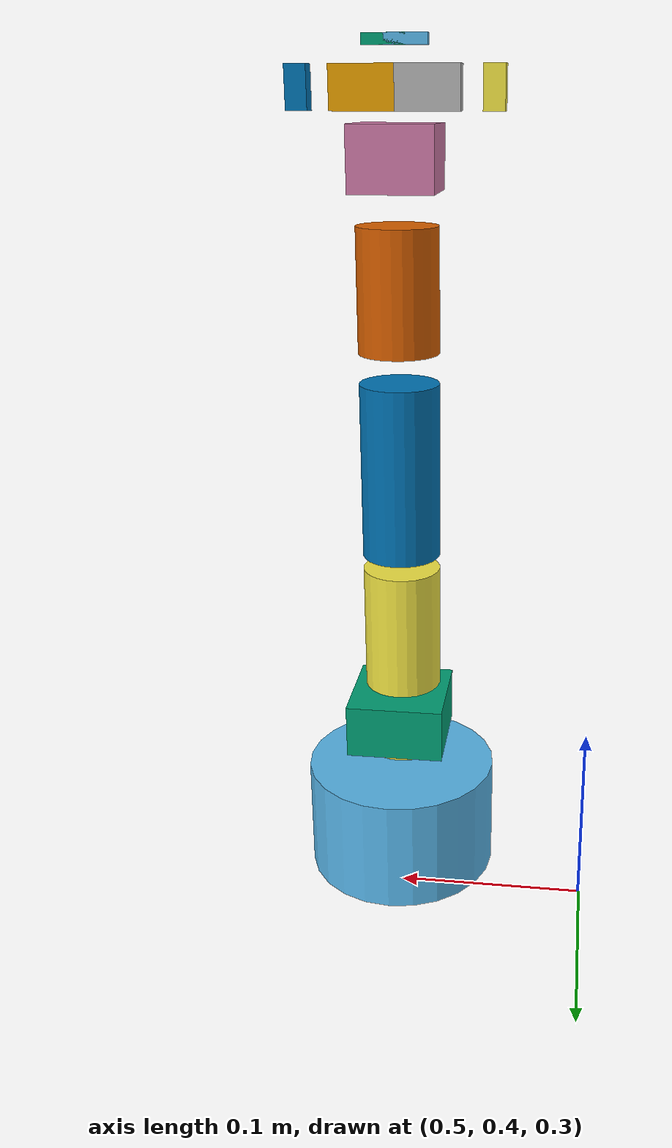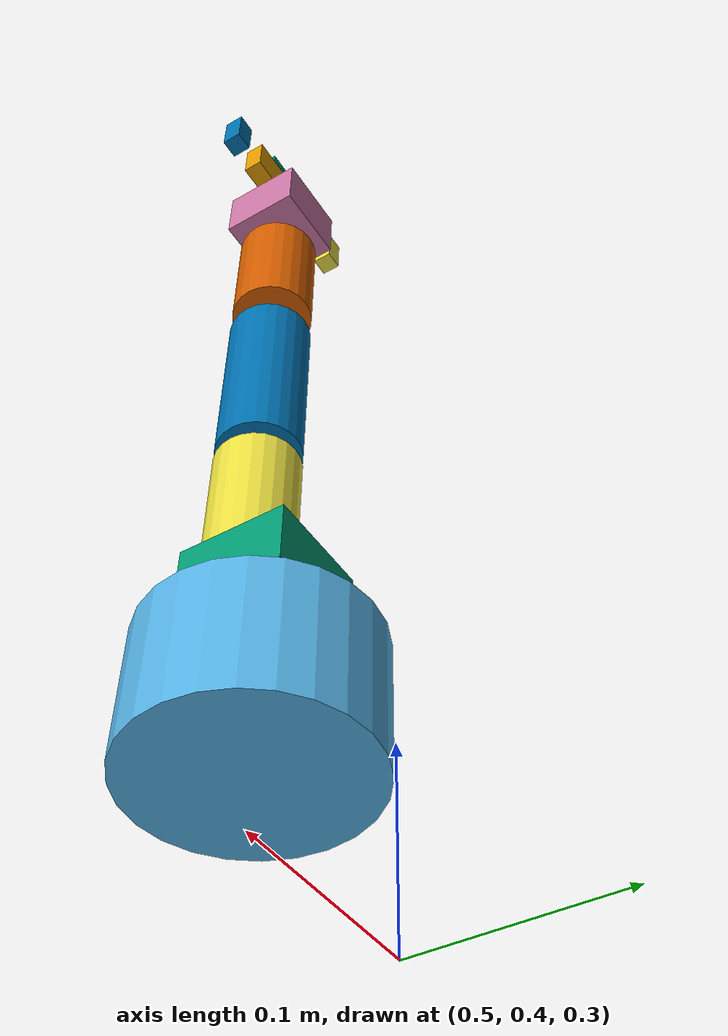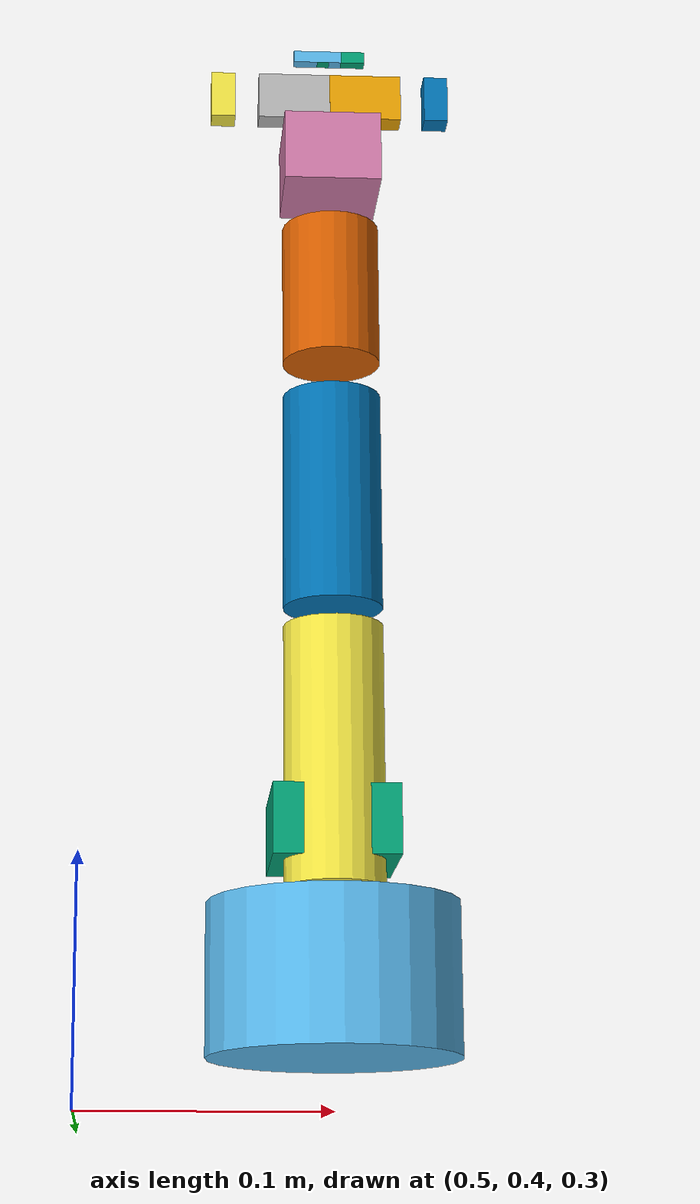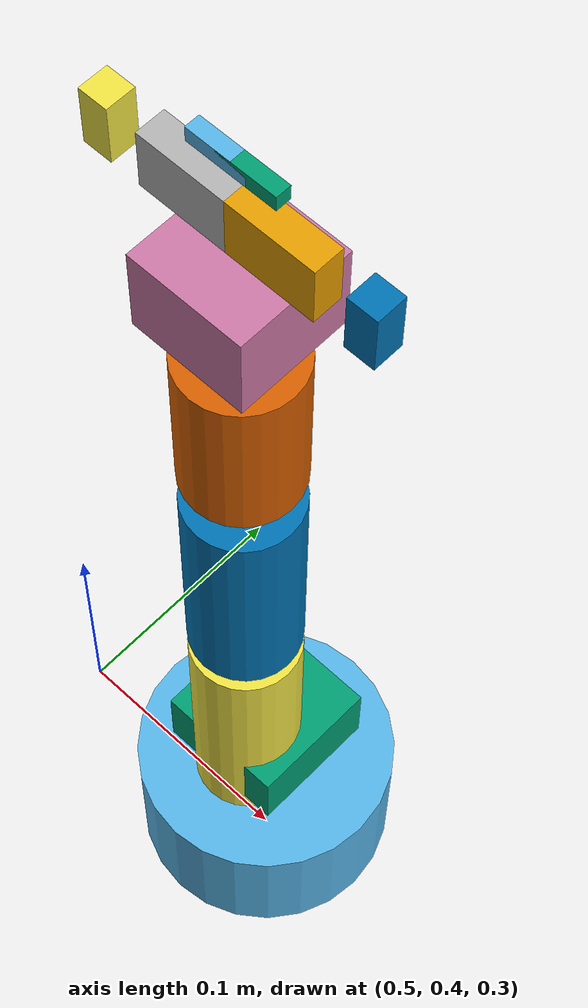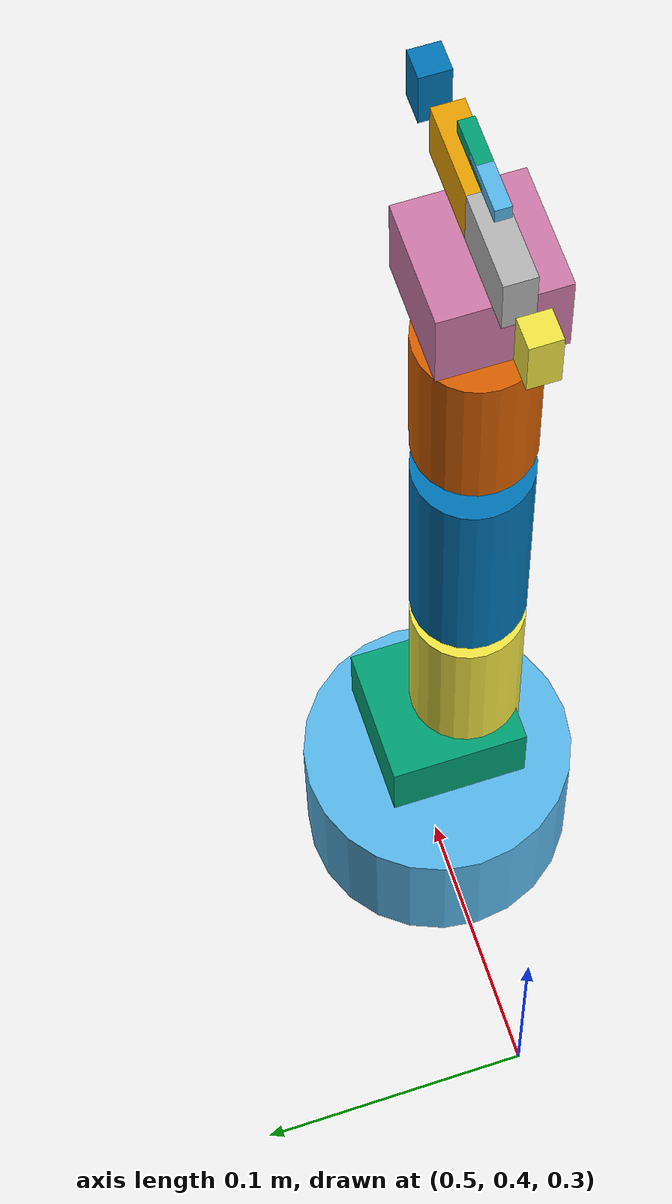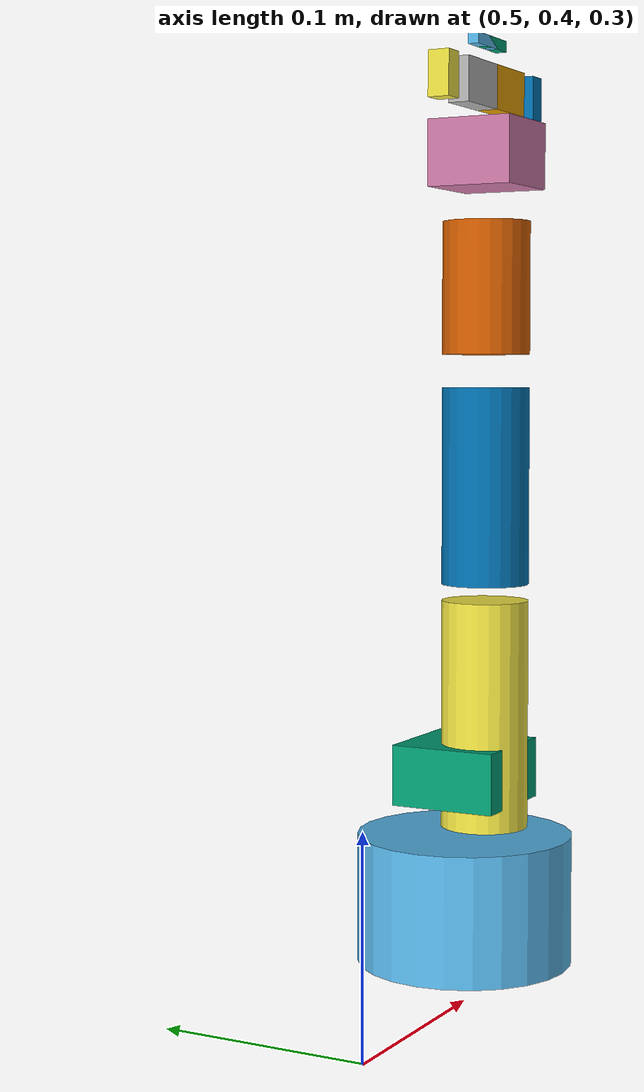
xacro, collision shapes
<?xml version="1.0"?>
<robot xmlns:xacro="http://www.ros.org/wiki/xacro" name="learm">
    <xacro:arg name="initial_positions_file" default="initial_positions.yaml" />

    <!-- Import learm urdf file -->
    <xacro:include filename="$(find fit_description)/urdf/arm.xacro" />

    <!-- Import control_xacro -->
    <xacro:include filename="learm.ros2_control.xacro" />

    <xacro:learm_ros2_control name="FakeSystem" initial_positions_file="$(arg initial_positions_file)"/>

</robot>

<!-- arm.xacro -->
<robot name="learm" xmlns:xacro="http://www.ros.org/wiki/xacro">

<xacro:property name="PI" value="3.14159265359" />

<link name="world"/>

  <link name="base_link">
    <inertial>
      <origin xyz="0 0 0.03" rpy="0 0 0"/>
      <mass value="1.0"/>
      <inertia ixx="0.01" ixy="0" ixz="0" iyy="0.01" iyz="0" izz="0.01"/>
    </inertial>
    <visual>
      <geometry>
        <mesh filename="package://fit_description/meshes/base.stl"/>
      </geometry>
    </visual>
    <collision>
      <geometry>
        <cylinder radius="0.05" length="0.06"/>
      </geometry>
    </collision>
  </link>
  <link name="shoulder_link">
    <inertial>
      <origin xyz="0 0 0.014" rpy="0 0 0"/>
      <mass value="0.5"/>
      <inertia ixx="0.001" ixy="0" ixz="0" iyy="0.001" iyz="0" izz="0.001"/>
    </inertial>
    <visual>
      <geometry>
        <mesh filename="package://fit_description/meshes/shoulder.stl"/>
      </geometry>
    </visual>
    <collision>
      <geometry>
        <box size="0.05 0.05 0.028"/>
      </geometry>
    </collision>
  </link>
  <link name="humerus_link">
    <inertial>
      <origin xyz="0 0 0.0525" rpy="0 0 0"/>
      <mass value="0.3"/>
      <inertia ixx="0.001" ixy="0" ixz="0" iyy="0.001" iyz="0" izz="0.001"/>
    </inertial>
    <visual>
      <geometry>
        <mesh filename="package://fit_description/meshes/humerus.stl"/>
      </geometry>
    </visual>
    <collision>
      <geometry>
        <cylinder radius="0.02" length="0.105"/>
      </geometry>
    </collision>
  </link>
  <link name="forearm_link">
    <inertial>
      <origin xyz="0 0 0.045" rpy="0 0 0"/>
      <mass value="0.25"/>
      <inertia ixx="0.001" ixy="0" ixz="0" iyy="0.001" iyz="0" izz="0.0005"/>
    </inertial>
    <visual>
      <geometry>
        <mesh filename="package://fit_description/meshes/forearm.stl"/>
      </geometry>
    </visual>
    <collision>
      <geometry>
        <cylinder radius="0.02" length="0.09"/>
      </geometry>
    </collision>
  </link>
  <link name="wrist_link">
    <inertial>
      <origin xyz="0 0 0.03" rpy="0 0 0"/>
      <mass value="0.2"/>
      <inertia ixx="0.0005" ixy="0" ixz="0" iyy="0.0005" iyz="0" izz="0.0003"/>
    </inertial>
    <visual>
      <origin xyz="0 0 0" rpy="0 0 0"/>
      <geometry>
        <mesh filename="package://fit_description/meshes/wrist.stl"/>
      </geometry>
    </visual>
    <collision>
      <geometry>
        <cylinder radius="0.02" length="0.06"/>
      </geometry>
    </collision>
  </link>
  <link name="hand_link">
    <inertial>
      <origin xyz="0 0 0.015" rpy="0 0 0"/>
      <mass value="0.15"/>
      <inertia ixx="0.0003" ixy="0" ixz="0" iyy="0.0003" iyz="0" izz="0.0002"/>
    </inertial>
    <visual>
      <geometry>
        <mesh filename="package://fit_description/meshes/hand.stl"/>
      </geometry>
    </visual>
    <collision>
      <geometry>
        <box size="0.04 0.04 0.03"/>
      </geometry>
    </collision>
  </link>
  <link name="grip_left_link">
    <inertial>
      <origin xyz="0 0 0.015" rpy="0 0 0"/>
      <mass value="0.05"/>
      <inertia ixx="0.0001" ixy="0" ixz="0" iyy="0.0001" iyz="0" izz="0.0001"/>
    </inertial>
    <visual>
      <geometry>
        <mesh filename="package://fit_description/meshes/carpal-left.stl"/>
      </geometry>
    </visual>
    <collision>
      <geometry>
        <box size="0.01 0.02 0.03"/>
      </geometry>
    </collision>
  </link>
  <link name="grip_right_link">
    <inertial>
      <origin xyz="0 0 0.015" rpy="0 0 0"/>
      <mass value="0.05"/>
      <inertia ixx="0.0001" ixy="0" ixz="0" iyy="0.0001" iyz="0" izz="0.0001"/>
    </inertial>
    <visual>
      <geometry>
        <mesh filename="package://fit_description/meshes/carpal-right.stl"/>
      </geometry>
    </visual>
    <collision>
      <geometry>
        <box size="0.01 0.02 0.03"/>
      </geometry>
    </collision>
  </link>
  <link name="tendon_left_link">
    <inertial>
      <origin xyz="0 0 0.01" rpy="0 0 0"/>
      <mass value="0.02"/>
      <inertia ixx="1e-05" ixy="0" ixz="0" iyy="1e-05" iyz="0" izz="1e-05"/>
    </inertial>
    <visual>
      <geometry>
        <mesh filename="package://fit_description/meshes/tendon.stl"/>
      </geometry>
    </visual>
    <collision>
      <geometry>
        <box size="0.005 0.005 0.02"/>
      </geometry>
    </collision>
  </link>
  <link name="tendon_right_link">
    <inertial>
      <origin xyz="0 0 0.01" rpy="0 0 0"/>
      <mass value="0.02"/>
      <inertia ixx="1e-05" ixy="0" ixz="0" iyy="1e-05" iyz="0" izz="1e-05"/>
    </inertial>
    <visual>
      <geometry>
        <mesh filename="package://fit_description/meshes/tendon.stl"/>
      </geometry>
    </visual>
    <collision>
      <geometry>
        <box size="0.005 0.005 0.02"/>
      </geometry>
    </collision>
  </link>
  <link name="finger_left_link">
    <inertial>
      <origin xyz="0 0 0.01" rpy="0 0 0"/>
      <mass value="0.02"/>
      <inertia ixx="1e-05" ixy="0" ixz="0" iyy="1e-05" iyz="0" izz="1e-05"/>
    </inertial>
    <visual>
      <geometry>
        <mesh filename="package://fit_description/meshes/finger.stl"/>
      </geometry>
    </visual>
    <collision>
      <geometry>
        <box size="0.01 0.01 0.02"/>
      </geometry>
    </collision>
  </link>
  <link name="finger_right_link">
    <inertial>
      <origin xyz="0 0 0.01" rpy="0 0 0"/>
      <mass value="0.02"/>
      <inertia ixx="1e-05" ixy="0" ixz="0" iyy="1e-05" iyz="0" izz="1e-05"/>
    </inertial>
    <visual>
      <origin rpy="0 0 3.14159"/>
      <geometry>
        <mesh filename="package://fit_description/meshes/finger.stl"/>
      </geometry>
    </visual>
    <collision>
      <geometry>
        <box size="0.01 0.01 0.02"/>
      </geometry>
    </collision>
  </link>

   <joint name="virtual_joint" type="fixed">
    <parent link="world"/>
    <child link="base_link"/>
    <origin xyz="0.6 0.4 0.35" rpy="0 0 1.57"/>
  </joint>

  <joint name="shoulder_pan" type="revolute">
    <parent link="base_link"/>
    <child link="shoulder_link"/>
    <origin xyz="0 0 0.059"/>
    <axis xyz="0 0 1"/>
    <limit lower="-1.57" upper="1.57" effort="1000" velocity="0.5"/>
  </joint>
  <joint name="shoulder_lift" type="revolute">
    <parent link="shoulder_link"/>
    <child link="humerus_link"/>
    <origin xyz="-0.010 0 0.028"/>
    <axis xyz="0 1 0"/>
    <limit lower="-1.57" upper="1.57" effort="1000" velocity="0.5"/>
  </joint>
  <joint name="elbow" type="revolute">
    <parent link="humerus_link"/>
    <child link="forearm_link"/>
    <origin xyz="0 0 0.105"/>
    <axis xyz="0 -1 0"/>
    <limit lower="-1.57" upper="1.57" effort="1000" velocity="0.5"/>
  </joint>
  <joint name="wrist_flex" type="revolute">
    <parent link="forearm_link"/>
    <child link="wrist_link"/>
    <origin xyz="0 0 0.090"/>
    <axis xyz="0 -1 0"/>
    <limit lower="-1.57" upper="1.57" effort="1000" velocity="0.5"/>
  </joint>
  <joint name="wrist_roll" type="revolute">
    <parent link="wrist_link"/>
    <child link="hand_link"/>
    <origin xyz="0 0 0.060"/>
    <axis xyz="0 0 1"/>
    <limit lower="-1.57" upper="1.57" effort="1000" velocity="0.5"/>
  </joint>
  <joint name="grip_left" type="revolute">
    <parent link="hand_link"/>
    <child link="grip_left_link"/>
    <origin xyz="0 0.015 0.030" rpy="-1.57 0 0"/>
    <axis xyz="-1 0 0"/>
    <limit lower="-1.57" upper="1.57" effort="1000" velocity="0.5"/>
  </joint>
  <joint name="grip_right" type="revolute">
    <parent link="hand_link"/>
    <child link="grip_right_link"/>
    <origin xyz="0 -0.015 0.030" rpy="1.57 0 0"/>
    <axis xyz="-1 0 0"/>
    <limit lower="-1.57" upper="1.57" effort="1000" velocity="0.5"/>
    <mimic joint="grip_left" multiplier="-1" offset="0"/>
  </joint>
  <joint name="tendon_left" type="revolute">
    <parent link="hand_link"/>
    <child link="tendon_left_link"/>
    <origin xyz="0 0.005 0.050" rpy="-1.57 0 0"/>
    <axis xyz="-1 0 0"/>
    <limit lower="-1.57" upper="1.57" effort="1000" velocity="0.5"/>
    <mimic joint="grip_left" offset="0"/>
  </joint>
  <joint name="tendon_right" type="revolute">
    <parent link="hand_link"/>
    <child link="tendon_right_link"/>
    <origin xyz="0 -0.005 0.050" rpy="1.57 0 0"/>
    <axis xyz="-1 0 0"/>
    <limit lower="-1.57" upper="1.57" effort="1000" velocity="0.5"/>
    <mimic joint="grip_left" multiplier="-1" offset="0"/>
  </joint>
  <joint name="finger_left" type="revolute">
    <parent link="grip_left_link"/>
    <child link="finger_left_link"/>
    <origin xyz="0 0 0.030" rpy="1.57 0 0"/>
    <axis xyz="-1 0 0"/>
    <limit lower="-1.57" upper="1.57" effort="1000" velocity="0.5"/>
    <mimic joint="grip_left" multiplier="-1" offset="0"/>
  </joint>
  <joint name="finger_right" type="revolute">
    <parent link="grip_right_link"/>
    <child link="finger_right_link"/>
    <origin xyz="0 0 0.030" rpy="-1.57 0 0"/>
    <axis xyz="-1 0 0"/>
    <limit lower="-1.57" upper="1.57" effort="1000" velocity="0.5"/>
    <mimic joint="grip_left" offset="0"/>
  </joint>
</robot>
